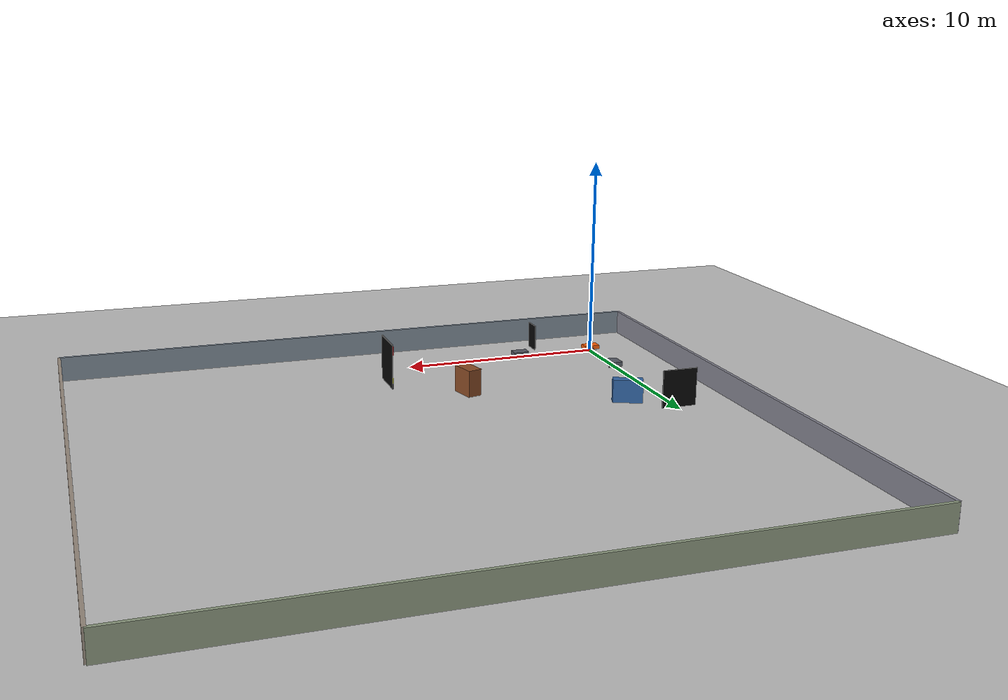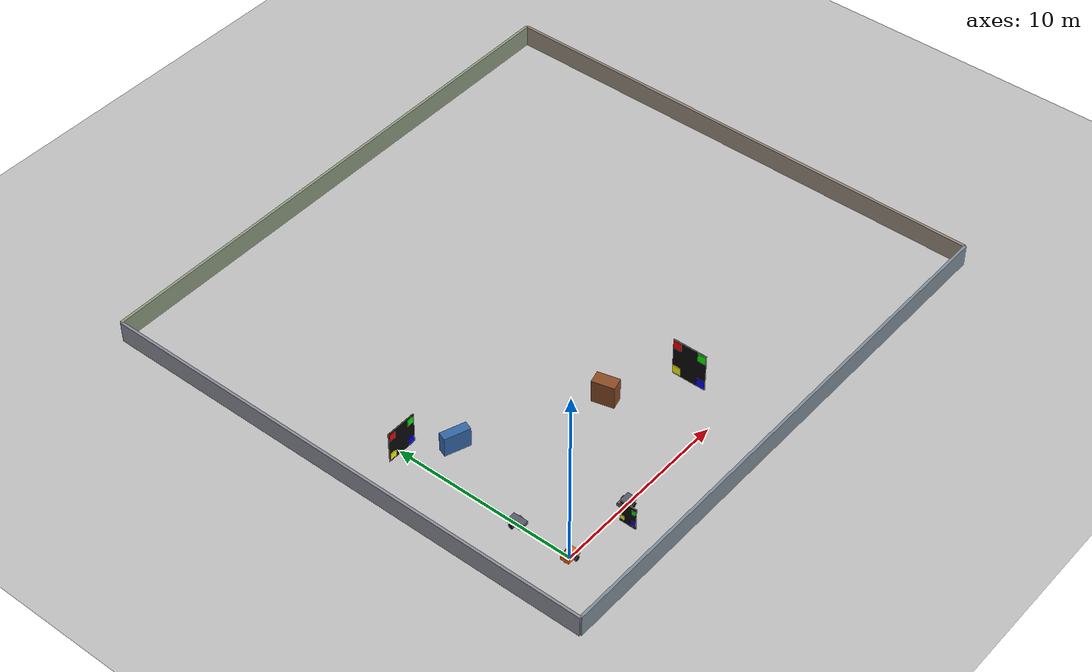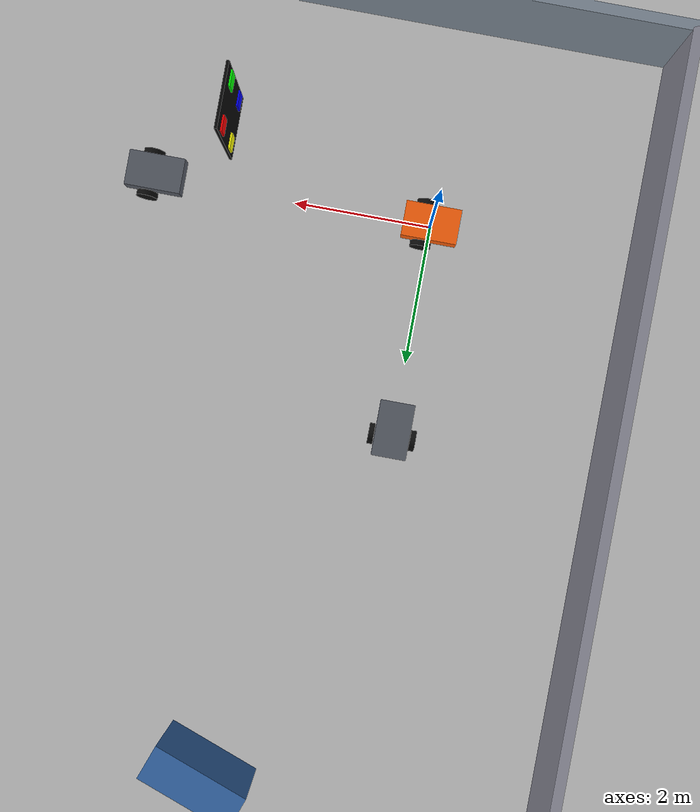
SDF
<?xml version="1.0"?>
<sdf version="1.8">
  <!-- World x/y/z are interpreted as ENU east/north/up. Positive yaw is
       counter-clockwise from east. Model x/y/z are vehicle FLU. -->
  <world name="zju_coop_gazebo">
    <physics name="one_khz" type="ignored">
      <max_step_size>0.001</max_step_size>
      <real_time_factor>1.0</real_time_factor>
    </physics>
    <gravity>0 0 -9.80665</gravity>
    <magnetic_field>0 0 0</magnetic_field>
    <scene>
      <!-- The project GUI config replaces Fortress's 20 x 20 m helper grid
           with a 40 x 40 m grid centred on the enlarged arena. -->
      <grid>false</grid>
    </scene>

    <plugin filename="libignition-gazebo-physics-system.so"
            name="ignition::gazebo::systems::Physics"/>
    <plugin filename="libignition-gazebo-user-commands-system.so"
            name="ignition::gazebo::systems::UserCommands"/>
    <plugin filename="libignition-gazebo-imu-system.so"
            name="ignition::gazebo::systems::Imu"/>
    <plugin filename="libignition-gazebo-sensors-system.so"
            name="ignition::gazebo::systems::Sensors">
      <render_engine>ogre2</render_engine>
    </plugin>
    <plugin filename="libignition-gazebo-scene-broadcaster-system.so"
            name="ignition::gazebo::systems::SceneBroadcaster"/>

    <light type="directional" name="sun">
      <cast_shadows>true</cast_shadows>
      <pose>0 0 10 0 0 0</pose>
      <diffuse>0.8 0.8 0.8 1</diffuse>
      <specular>0.2 0.2 0.2 1</specular>
      <attenuation><range>1000</range><constant>0.9</constant><linear>0.01</linear><quadratic>0.001</quadratic></attenuation>
      <direction>-0.5 0.1 -0.9</direction>
    </light>

    <model name="ground_plane">
      <static>true</static>
      <link name="link">
        <collision name="collision">
          <geometry><plane><normal>0 0 1</normal><size>100 100</size></plane></geometry>
        </collision>
        <visual name="visual">
          <pose>0 0 -0.005 0 0 0</pose>
          <geometry><plane><normal>0 0 1</normal><size>100 100</size></plane></geometry>
          <material><ambient>0.75 0.75 0.75 1</ambient><diffuse>0.75 0.75 0.75 1</diffuse></material>
        </visual>
      </link>
    </model>

    <!-- Static, asymmetric geometry makes planar scan matching observable.
         The 100 x 100 ground plane alone is invisible to a horizontal scan. -->
    <model name="arena_walls">
      <static>true</static>
      <link name="link">
        <collision name="west_collision"><pose>-3 11 0.6 0 0 0</pose><geometry><box><size>0.15 28 1.2</size></box></geometry></collision>
        <visual name="west_visual"><pose>-3 11 0.6 0 0 0</pose><geometry><box><size>0.15 28 1.2</size></box></geometry><material><ambient>0.55 0.55 0.60 1</ambient><diffuse>0.55 0.55 0.60 1</diffuse></material></visual>
        <collision name="east_collision"><pose>27 11 0.6 0 0 0</pose><geometry><box><size>0.15 28 1.2</size></box></geometry></collision>
        <visual name="east_visual"><pose>27 11 0.6 0 0 0</pose><geometry><box><size>0.15 28 1.2</size></box></geometry><material><ambient>0.60 0.55 0.50 1</ambient><diffuse>0.60 0.55 0.50 1</diffuse></material></visual>
        <collision name="south_collision"><pose>12 -3 0.6 0 0 0</pose><geometry><box><size>30 0.15 1.2</size></box></geometry></collision>
        <visual name="south_visual"><pose>12 -3 0.6 0 0 0</pose><geometry><box><size>30 0.15 1.2</size></box></geometry><material><ambient>0.50 0.55 0.60 1</ambient><diffuse>0.50 0.55 0.60 1</diffuse></material></visual>
        <collision name="north_collision"><pose>12 25 0.6 0 0 0</pose><geometry><box><size>30 0.15 1.2</size></box></geometry></collision>
        <visual name="north_visual"><pose>12 25 0.6 0 0 0</pose><geometry><box><size>30 0.15 1.2</size></box></geometry><material><ambient>0.55 0.60 0.50 1</ambient><diffuse>0.55 0.60 0.50 1</diffuse></material></visual>

        <collision name="pillar_a_collision"><pose>8.5 4.8 0.65 0 0 0.25</pose><geometry><box><size>0.7 1.2 1.3</size></box></geometry></collision>
        <visual name="pillar_a_visual"><pose>8.5 4.8 0.65 0 0 0.25</pose><geometry><box><size>0.7 1.2 1.3</size></box></geometry><material><ambient>0.45 0.25 0.15 1</ambient><diffuse>0.55 0.30 0.15 1</diffuse></material></visual>
        <collision name="pillar_b_collision"><pose>1.8 8.2 0.55 0 0 -0.35</pose><geometry><box><size>1.4 0.5 1.1</size></box></geometry></collision>
        <visual name="pillar_b_visual"><pose>1.8 8.2 0.55 0 0 -0.35</pose><geometry><box><size>1.4 0.5 1.1</size></box></geometry><material><ambient>0.20 0.35 0.55 1</ambient><diffuse>0.20 0.40 0.65 1</diffuse></material></visual>
      </link>
    </model>

    <model name="reference_visual_landmark">
      <static>true</static>
      <pose>3.00 -0.85 0 0 0 0</pose>
      <link name="link">
        <visual name="board"><pose>0 0 0.85 0 0 0</pose><geometry><box><size>0.04 0.90 1.30</size></box></geometry><material><ambient>0.03 0.03 0.03 1</ambient><diffuse>0.03 0.03 0.03 1</diffuse></material></visual>
        <visual name="red"><pose>-0.03 0.30 1.20 0 0 0</pose><geometry><box><size>0.03 0.22 0.22</size></box></geometry><material><ambient>1 0 0 1</ambient><diffuse>1 0 0 1</diffuse><emissive>1 0 0 1</emissive></material></visual>
        <visual name="green"><pose>-0.03 -0.30 1.20 0 0 0</pose><geometry><box><size>0.03 0.22 0.22</size></box></geometry><material><ambient>0 1 0 1</ambient><diffuse>0 1 0 1</diffuse><emissive>0 1 0 1</emissive></material></visual>
        <visual name="blue"><pose>-0.03 -0.30 0.50 0 0 0</pose><geometry><box><size>0.03 0.22 0.22</size></box></geometry><material><ambient>0 0 1 1</ambient><diffuse>0 0 1 1</diffuse><emissive>0 0 1 1</emissive></material></visual>
        <visual name="yellow"><pose>-0.03 0.30 0.50 0 0 0</pose><geometry><box><size>0.03 0.22 0.22</size></box></geometry><material><ambient>1 1 0 1</ambient><diffuse>1 1 0 1</diffuse><emissive>1 1 0 1</emissive></material></visual>
      </link>
    </model>

    <model name="east_visual_landmark">
      <static>true</static>
      <!-- Offset the board south so vehicle_2 cannot occlude it from the
           reference vehicle's front camera. -->
      <pose>11.85 2.50 0 0 0 0</pose>
      <link name="link">
        <visual name="board"><pose>0 0 1.20 0 0 0</pose><geometry><box><size>0.04 1.90 2.20</size></box></geometry><material><ambient>0.03 0.03 0.03 1</ambient><diffuse>0.03 0.03 0.03 1</diffuse></material></visual>
        <visual name="red"><pose>-0.03 0.70 2.00 0 0 0</pose><geometry><box><size>0.03 0.45 0.45</size></box></geometry><material><ambient>1 0 0 1</ambient><diffuse>1 0 0 1</diffuse><emissive>1 0 0 1</emissive></material></visual>
        <visual name="green"><pose>-0.03 -0.70 2.00 0 0 0</pose><geometry><box><size>0.03 0.45 0.45</size></box></geometry><material><ambient>0 1 0 1</ambient><diffuse>0 1 0 1</diffuse><emissive>0 1 0 1</emissive></material></visual>
        <visual name="blue"><pose>-0.03 -0.70 0.40 0 0 0</pose><geometry><box><size>0.03 0.45 0.45</size></box></geometry><material><ambient>0 0 1 1</ambient><diffuse>0 0 1 1</diffuse><emissive>0 0 1 1</emissive></material></visual>
        <visual name="yellow"><pose>-0.03 0.70 0.40 0 0 0</pose><geometry><box><size>0.03 0.45 0.45</size></box></geometry><material><ambient>1 1 0 1</ambient><diffuse>1 1 0 1</diffuse><emissive>1 1 0 1</emissive></material></visual>
      </link>
    </model>

    <model name="north_visual_landmark">
      <static>true</static>
      <pose>0 9.85 0 0 0 1.5707963267948966</pose>
      <link name="link">
        <visual name="board"><pose>0 0 1.00 0 0 0</pose><geometry><box><size>0.04 1.70 1.80</size></box></geometry><material><ambient>0.03 0.03 0.03 1</ambient><diffuse>0.03 0.03 0.03 1</diffuse></material></visual>
        <visual name="red"><pose>-0.03 0.60 1.60 0 0 0</pose><geometry><box><size>0.03 0.36 0.36</size></box></geometry><material><ambient>1 0 0 1</ambient><diffuse>1 0 0 1</diffuse><emissive>1 0 0 1</emissive></material></visual>
        <visual name="green"><pose>-0.03 -0.60 1.60 0 0 0</pose><geometry><box><size>0.03 0.36 0.36</size></box></geometry><material><ambient>0 1 0 1</ambient><diffuse>0 1 0 1</diffuse><emissive>0 1 0 1</emissive></material></visual>
        <visual name="blue"><pose>-0.03 -0.60 0.40 0 0 0</pose><geometry><box><size>0.03 0.36 0.36</size></box></geometry><material><ambient>0 0 1 1</ambient><diffuse>0 0 1 1</diffuse><emissive>0 0 1 1</emissive></material></visual>
        <visual name="yellow"><pose>-0.03 0.60 0.40 0 0 0</pose><geometry><box><size>0.03 0.36 0.36</size></box></geometry><material><ambient>1 1 0 1</ambient><diffuse>1 1 0 1</diffuse><emissive>1 1 0 1</emissive></material></visual>
      </link>
    </model>

    <include>
      <!-- Reference vehicle uses the orange visual variant; its dynamics,
           IMU, and pose-publisher contract are unchanged. -->
      <uri>model://zju_reference_vehicle</uri>
      <name>vehicle_1</name>
      <pose>0 0 0.25 0 0 0</pose>
    </include>
    <include>
      <uri>model://zju_diff_vehicle</uri>
      <name>vehicle_2</name>
      <pose>4 0 0.25 0 0 0</pose>
    </include>
    <include>
      <uri>model://zju_diff_vehicle</uri>
      <name>vehicle_3</name>
      <pose>0 3 0.25 0 0 1.5707963267948966</pose>
    </include>
  </world>
</sdf>

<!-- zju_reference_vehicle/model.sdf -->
<sdf version="1.8">
  <!-- Keep physics, sensors, joints, and plugins identical to
       zju_diff_vehicle. Only the body material is changed so vehicle_1
       is visually identifiable in the GUI. -->
  <model name="zju_reference_vehicle">
    <self_collide>false</self_collide>

    <link name="base_link">
      <pose>0 0 0 0 0 0</pose>
      <inertial>
        <mass>20.0</mass>
        <inertia>
          <ixx>0.4833333333</ixx>
          <iyy>1.1333333333</iyy>
          <izz>1.4833333333</izz>
          <ixy>0</ixy>
          <ixz>0</ixz>
          <iyz>0</iyz>
        </inertia>
      </inertial>
      <collision name="body_collision">
        <geometry>
          <box><size>0.8 0.5 0.2</size></box>
        </geometry>
      </collision>
      <visual name="body_visual">
        <geometry>
          <box><size>0.8 0.5 0.2</size></box>
        </geometry>
        <material>
          <ambient>0.85 0.25 0.03 1</ambient>
          <diffuse>1.0 0.38 0.04 1</diffuse>
        </material>
      </visual>

      <!-- The first version assumes the IMU and UWB reference point coincide
           with base_link and are axis-aligned with vehicle FLU. -->
      <sensor name="imu_sensor" type="imu">
        <always_on>true</always_on>
        <update_rate>100</update_rate>
        <ignition_frame_id>imu_link</ignition_frame_id>
      </sensor>

      <!-- Optional development sensors. They stay idle until their Gazebo
           topics have subscribers; the production localization nodes do not
           subscribe to either raw stream. -->
      <sensor name="front_lidar" type="gpu_lidar">
        <pose>0.20 0 0.20 0 0 0</pose>
        <always_on>false</always_on>
        <update_rate>5</update_rate>
        <visualize>false</visualize>
        <lidar>
          <scan>
            <horizontal>
              <samples>360</samples>
              <resolution>1</resolution>
              <min_angle>-3.141592653589793</min_angle>
              <max_angle>3.141592653589793</max_angle>
            </horizontal>
            <vertical>
              <samples>1</samples>
              <resolution>1</resolution>
              <min_angle>0</min_angle>
              <max_angle>0</max_angle>
            </vertical>
          </scan>
          <range>
            <min>0.20</min>
            <max>40.0</max>
            <resolution>0.02</resolution>
          </range>
        </lidar>
      </sensor>

      <sensor name="front_camera" type="camera">
        <pose>0.41 0 0.10 0 0 0</pose>
        <always_on>false</always_on>
        <update_rate>10</update_rate>
        <visualize>false</visualize>
        <camera>
          <horizontal_fov>1.047197551196598</horizontal_fov>
          <image>
            <width>320</width>
            <height>240</height>
            <format>R8G8B8</format>
          </image>
          <clip>
            <near>0.10</near>
            <far>50.0</far>
          </clip>
        </camera>
      </sensor>
    </link>

    <link name="left_wheel">
      <pose>0.10 0.30 -0.10 1.5707963267948966 0 0</pose>
      <inertial>
        <mass>1.0</mass>
        <inertia>
          <ixx>0.0061583333</ixx>
          <iyy>0.0061583333</iyy>
          <izz>0.01125</izz>
          <ixy>0</ixy><ixz>0</ixz><iyz>0</iyz>
        </inertia>
      </inertial>
      <collision name="collision">
        <geometry><cylinder><radius>0.15</radius><length>0.08</length></cylinder></geometry>
        <surface>
          <friction><ode><mu>1.0</mu><mu2>1.0</mu2></ode></friction>
        </surface>
      </collision>
      <visual name="visual">
        <geometry><cylinder><radius>0.15</radius><length>0.08</length></cylinder></geometry>
        <material><ambient>0.05 0.05 0.05 1</ambient><diffuse>0.05 0.05 0.05 1</diffuse></material>
      </visual>
    </link>

    <link name="right_wheel">
      <pose>0.10 -0.30 -0.10 1.5707963267948966 0 0</pose>
      <inertial>
        <mass>1.0</mass>
        <inertia>
          <ixx>0.0061583333</ixx>
          <iyy>0.0061583333</iyy>
          <izz>0.01125</izz>
          <ixy>0</ixy><ixz>0</ixz><iyz>0</iyz>
        </inertia>
      </inertial>
      <collision name="collision">
        <geometry><cylinder><radius>0.15</radius><length>0.08</length></cylinder></geometry>
        <surface>
          <friction><ode><mu>1.0</mu><mu2>1.0</mu2></ode></friction>
        </surface>
      </collision>
      <visual name="visual">
        <geometry><cylinder><radius>0.15</radius><length>0.08</length></cylinder></geometry>
        <material><ambient>0.05 0.05 0.05 1</ambient><diffuse>0.05 0.05 0.05 1</diffuse></material>
      </visual>
    </link>

    <link name="caster">
      <pose>-0.30 0 -0.17 0 0 0</pose>
      <inertial>
        <mass>0.5</mass>
        <inertia>
          <ixx>0.00128</ixx><iyy>0.00128</iyy><izz>0.00128</izz>
          <ixy>0</ixy><ixz>0</ixz><iyz>0</iyz>
        </inertia>
      </inertial>
      <collision name="collision">
        <geometry><sphere><radius>0.08</radius></sphere></geometry>
        <surface>
          <friction><ode><mu>0.0</mu><mu2>0.0</mu2></ode></friction>
        </surface>
      </collision>
      <visual name="visual">
        <geometry><sphere><radius>0.08</radius></sphere></geometry>
      </visual>
    </link>

    <joint name="left_wheel_joint" type="revolute">
      <parent>base_link</parent>
      <child>left_wheel</child>
      <axis>
        <xyz expressed_in="__model__">0 1 0</xyz>
      </axis>
    </joint>
    <joint name="right_wheel_joint" type="revolute">
      <parent>base_link</parent>
      <child>right_wheel</child>
      <axis>
        <xyz expressed_in="__model__">0 1 0</xyz>
      </axis>
    </joint>
    <joint name="caster_joint" type="fixed">
      <parent>base_link</parent>
      <child>caster</child>
    </joint>

    <plugin filename="libignition-gazebo-diff-drive-system.so"
            name="ignition::gazebo::systems::DiffDrive">
      <left_joint>left_wheel_joint</left_joint>
      <right_joint>right_wheel_joint</right_joint>
      <wheel_separation>0.60</wheel_separation>
      <wheel_radius>0.15</wheel_radius>
      <odom_publish_frequency>50</odom_publish_frequency>
      <max_linear_acceleration>0.30</max_linear_acceleration>
      <min_linear_acceleration>-0.30</min_linear_acceleration>
      <max_angular_acceleration>0.50</max_angular_acceleration>
      <min_angular_acceleration>-0.50</min_angular_acceleration>
    </plugin>
    <plugin filename="libignition-gazebo-pose-publisher-system.so"
            name="ignition::gazebo::systems::PosePublisher">
      <publish_link_pose>false</publish_link_pose>
      <publish_visual_pose>false</publish_visual_pose>
      <publish_collision_pose>false</publish_collision_pose>
      <publish_sensor_pose>false</publish_sensor_pose>
      <publish_model_pose>true</publish_model_pose>
      <publish_nested_model_pose>true</publish_nested_model_pose>
      <use_pose_vector_msg>true</use_pose_vector_msg>
      <update_frequency>50</update_frequency>
    </plugin>
  </model>
</sdf>

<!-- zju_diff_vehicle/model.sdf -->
<sdf version="1.8">
  <model name="zju_diff_vehicle">
    <self_collide>false</self_collide>

    <link name="base_link">
      <pose>0 0 0 0 0 0</pose>
      <inertial>
        <mass>20.0</mass>
        <inertia>
          <ixx>0.4833333333</ixx>
          <iyy>1.1333333333</iyy>
          <izz>1.4833333333</izz>
          <ixy>0</ixy>
          <ixz>0</ixz>
          <iyz>0</iyz>
        </inertia>
      </inertial>
      <collision name="body_collision">
        <geometry>
          <box><size>0.8 0.5 0.2</size></box>
        </geometry>
      </collision>
      <visual name="body_visual">
        <geometry>
          <box><size>0.8 0.5 0.2</size></box>
        </geometry>
        <material>
          <!-- Neutral grey avoids being mistaken for the blue visual
               landmark while keeping the orange reference car distinctive. -->
          <ambient>0.28 0.30 0.34 1</ambient>
          <diffuse>0.34 0.36 0.40 1</diffuse>
        </material>
      </visual>

      <!-- The first version assumes the IMU and UWB reference point coincide
           with base_link and are axis-aligned with vehicle FLU. -->
      <sensor name="imu_sensor" type="imu">
        <always_on>true</always_on>
        <update_rate>100</update_rate>
        <ignition_frame_id>imu_link</ignition_frame_id>
      </sensor>

      <!-- Optional development sensors. They stay idle until their Gazebo
           topics have subscribers; the production localization nodes do not
           subscribe to either raw stream. -->
      <sensor name="front_lidar" type="gpu_lidar">
        <pose>0.20 0 0.20 0 0 0</pose>
        <always_on>false</always_on>
        <update_rate>5</update_rate>
        <visualize>false</visualize>
        <lidar>
          <scan>
            <horizontal>
              <samples>360</samples>
              <resolution>1</resolution>
              <min_angle>-3.141592653589793</min_angle>
              <max_angle>3.141592653589793</max_angle>
            </horizontal>
            <vertical>
              <samples>1</samples>
              <resolution>1</resolution>
              <min_angle>0</min_angle>
              <max_angle>0</max_angle>
            </vertical>
          </scan>
          <range>
            <min>0.20</min>
            <max>40.0</max>
            <resolution>0.02</resolution>
          </range>
        </lidar>
      </sensor>

      <sensor name="front_camera" type="camera">
        <pose>0.41 0 0.10 0 0 0</pose>
        <always_on>false</always_on>
        <update_rate>10</update_rate>
        <visualize>false</visualize>
        <camera>
          <horizontal_fov>1.047197551196598</horizontal_fov>
          <image>
            <width>320</width>
            <height>240</height>
            <format>R8G8B8</format>
          </image>
          <clip>
            <near>0.10</near>
            <far>50.0</far>
          </clip>
        </camera>
      </sensor>
    </link>

    <link name="left_wheel">
      <pose>0.10 0.30 -0.10 1.5707963267948966 0 0</pose>
      <inertial>
        <mass>1.0</mass>
        <inertia>
          <ixx>0.0061583333</ixx>
          <iyy>0.0061583333</iyy>
          <izz>0.01125</izz>
          <ixy>0</ixy><ixz>0</ixz><iyz>0</iyz>
        </inertia>
      </inertial>
      <collision name="collision">
        <geometry><cylinder><radius>0.15</radius><length>0.08</length></cylinder></geometry>
        <surface>
          <friction><ode><mu>1.0</mu><mu2>1.0</mu2></ode></friction>
        </surface>
      </collision>
      <visual name="visual">
        <geometry><cylinder><radius>0.15</radius><length>0.08</length></cylinder></geometry>
        <material><ambient>0.05 0.05 0.05 1</ambient><diffuse>0.05 0.05 0.05 1</diffuse></material>
      </visual>
    </link>

    <link name="right_wheel">
      <pose>0.10 -0.30 -0.10 1.5707963267948966 0 0</pose>
      <inertial>
        <mass>1.0</mass>
        <inertia>
          <ixx>0.0061583333</ixx>
          <iyy>0.0061583333</iyy>
          <izz>0.01125</izz>
          <ixy>0</ixy><ixz>0</ixz><iyz>0</iyz>
        </inertia>
      </inertial>
      <collision name="collision">
        <geometry><cylinder><radius>0.15</radius><length>0.08</length></cylinder></geometry>
        <surface>
          <friction><ode><mu>1.0</mu><mu2>1.0</mu2></ode></friction>
        </surface>
      </collision>
      <visual name="visual">
        <geometry><cylinder><radius>0.15</radius><length>0.08</length></cylinder></geometry>
        <material><ambient>0.05 0.05 0.05 1</ambient><diffuse>0.05 0.05 0.05 1</diffuse></material>
      </visual>
    </link>

    <link name="caster">
      <pose>-0.30 0 -0.17 0 0 0</pose>
      <inertial>
        <mass>0.5</mass>
        <inertia>
          <ixx>0.00128</ixx><iyy>0.00128</iyy><izz>0.00128</izz>
          <ixy>0</ixy><ixz>0</ixz><iyz>0</iyz>
        </inertia>
      </inertial>
      <collision name="collision">
        <geometry><sphere><radius>0.08</radius></sphere></geometry>
        <surface>
          <friction><ode><mu>0.0</mu><mu2>0.0</mu2></ode></friction>
        </surface>
      </collision>
      <visual name="visual">
        <geometry><sphere><radius>0.08</radius></sphere></geometry>
      </visual>
    </link>

    <joint name="left_wheel_joint" type="revolute">
      <parent>base_link</parent>
      <child>left_wheel</child>
      <axis>
        <xyz expressed_in="__model__">0 1 0</xyz>
      </axis>
    </joint>
    <joint name="right_wheel_joint" type="revolute">
      <parent>base_link</parent>
      <child>right_wheel</child>
      <axis>
        <xyz expressed_in="__model__">0 1 0</xyz>
      </axis>
    </joint>
    <joint name="caster_joint" type="fixed">
      <parent>base_link</parent>
      <child>caster</child>
    </joint>

    <plugin filename="libignition-gazebo-diff-drive-system.so"
            name="ignition::gazebo::systems::DiffDrive">
      <left_joint>left_wheel_joint</left_joint>
      <right_joint>right_wheel_joint</right_joint>
      <wheel_separation>0.60</wheel_separation>
      <wheel_radius>0.15</wheel_radius>
      <odom_publish_frequency>50</odom_publish_frequency>
      <max_linear_acceleration>0.30</max_linear_acceleration>
      <min_linear_acceleration>-0.30</min_linear_acceleration>
      <max_angular_acceleration>0.50</max_angular_acceleration>
      <min_angular_acceleration>-0.50</min_angular_acceleration>
    </plugin>
    <plugin filename="libignition-gazebo-pose-publisher-system.so"
            name="ignition::gazebo::systems::PosePublisher">
      <publish_link_pose>false</publish_link_pose>
      <publish_visual_pose>false</publish_visual_pose>
      <publish_collision_pose>false</publish_collision_pose>
      <publish_sensor_pose>false</publish_sensor_pose>
      <publish_model_pose>true</publish_model_pose>
      <publish_nested_model_pose>true</publish_nested_model_pose>
      <use_pose_vector_msg>true</use_pose_vector_msg>
      <update_frequency>50</update_frequency>
    </plugin>
  </model>
</sdf>
